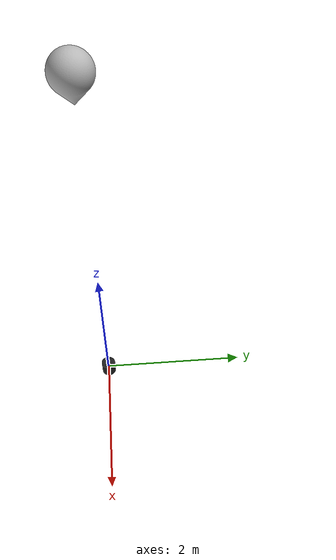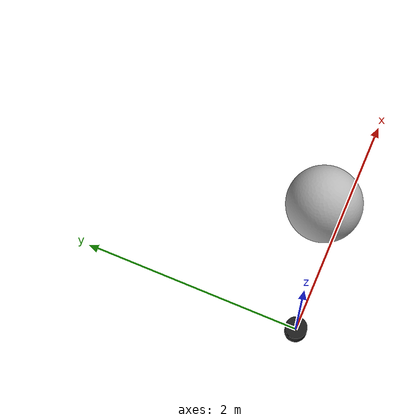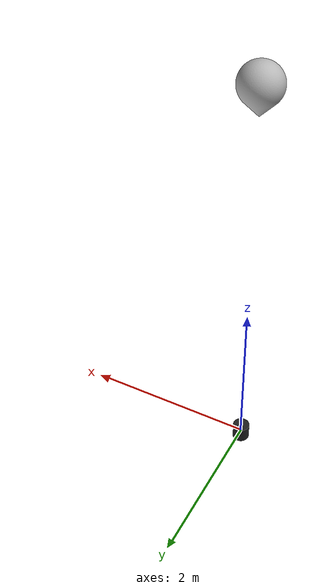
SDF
<?xml version="1.0" ?>
<sdf version="1.5">
  <model name="balloon_stick">
    <static>0</static>
    <link name="balloon_link">
      <gravity>0</gravity>
      <pose>0 0 5 0 0 0</pose>

      <inertial>
        <mass>0.1</mass>
        <inertia>
          <ixx>0.008611666666666669</ixx>
          <ixy>0</ixy>
          <ixz>0</ixz>
          <iyy>0.008611666666666669</iyy>
          <iyz>0</iyz>
          <izz>0.008611666666666669</izz>
        </inertia>
      </inertial>

      <visual name="balloon">
        <pose>0 0 0.25 0 0 0</pose>
        <geometry>
          <mesh>
            <uri>model://balloon_red/meshes/balonek.stl</uri>
          </mesh>
        </geometry>
        <material>
          <script>
            <uri>model://balloon_red/scripts</uri>
            <uri>model://balloon_red/materials/textures</uri>
            <name>BalloonRed/Balloon</name>
          </script>
        </material>
      </visual>

    </link>

    <link name="stick_link">
      <gravity>0</gravity>
      <pose>0 0 0 0 0 0</pose>

      <inertial>
        <mass>0.01</mass>
        <inertia>
          <ixx>0</ixx>
          <ixy>0</ixy>
          <ixz>0</ixz>
          <iyy>0</iyy>
          <iyz>0</iyz>
          <izz>0</izz>
        </inertia>
      </inertial>

    </link>

    <link name="anchor_link">
      <gravity>1</gravity>
      <pose>0 0 0 0 0 0</pose>

      <inertial>
        <mass>10</mass>
        <inertia>
          <ixx>0.08611666666666669</ixx>
          <ixy>0</ixy>
          <ixz>0</ixz>
          <iyy>0.08611666666666669</iyy>
          <iyz>0</iyz>
          <izz>0.08611666666666669</izz>
        </inertia>
      </inertial>

      <visual name="anchor">
        <pose>0 0 0 0 0 0</pose>
        <geometry>
          <cylinder>
            <radius>0.1</radius>
            <length>0.2</length>
          </cylinder>
        </geometry>
        <material>
          <script>
            <name>Gazebo/GazeboBlack</name>
          </script>
        </material>
      </visual>

      <collision name="anchor">
        <pose>0 0 0 0 0 0</pose>
        <geometry>
          <cylinder>
            <radius>0.1</radius>
            <length>0.2</length>
          </cylinder>
        </geometry>
      </collision>

    </link>

    <joint name="anchor_stick_joint" type="ball">
      <child>stick_link</child>
      <parent>anchor_link</parent>
    </joint>
    <joint name="stick_balloon_joint" type="ball">
      <child>balloon_link</child>
      <parent>stick_link</parent>
    </joint>
  </model>
</sdf>
